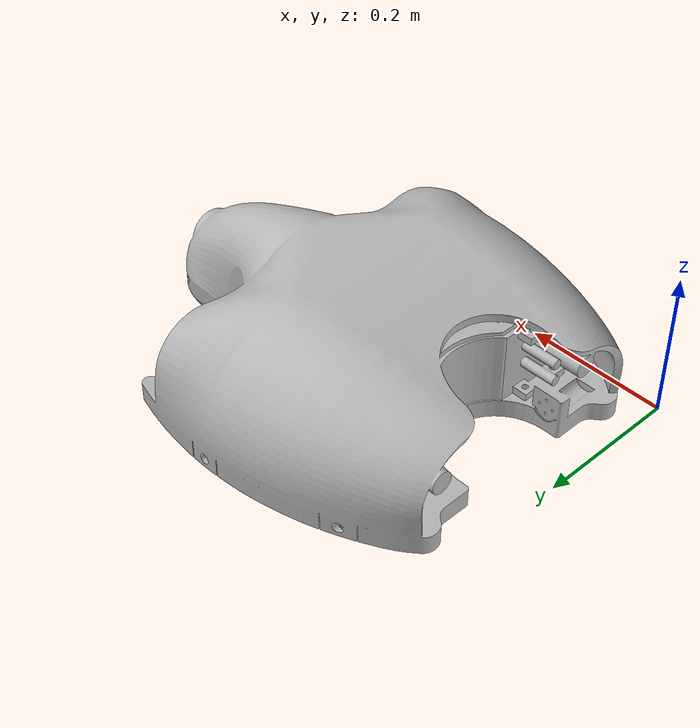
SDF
<?xml version="1.0" ?>
<sdf version="1.6">
  <model name="rovModel">
    <static>false</static>
    <link name="body">
      <inertial>
        <mass>1102.6990214100174</mass>
        <inertia>
          <ixx>645.9978433760353</ixx>
          <ixy>0</ixy>
          <ixz>0</ixz>
          <iyy>645.9978433760353</iyy>
          <iyz>0</iyz>
          <izz>49.62145596345078</izz>
        </inertia>
      </inertial>
      <collision name="collision">
        <geometry>
              <cylinder>
                <radius>0.3</radius>
                <length>0.5</length>
              </cylinder>
            </geometry>
      </collision>
      <pose>0 0 0 0 0 0</pose>
      <visual name="visual">
        <geometry>
          <mesh>
            <scale>0.001 0.001 0.001</scale>
            <uri>model://rovModel/meshes/rovModel.stl</uri>
          </mesh>
        </geometry>
      </visual>
    </link>

    <plugin name="rovModel" filename="rovModel/librovModel.so"/>
  </model>
</sdf>
